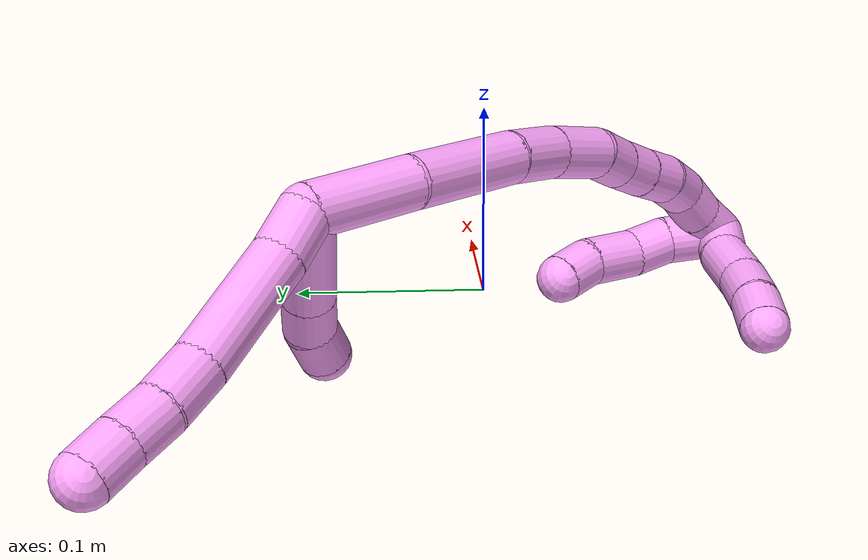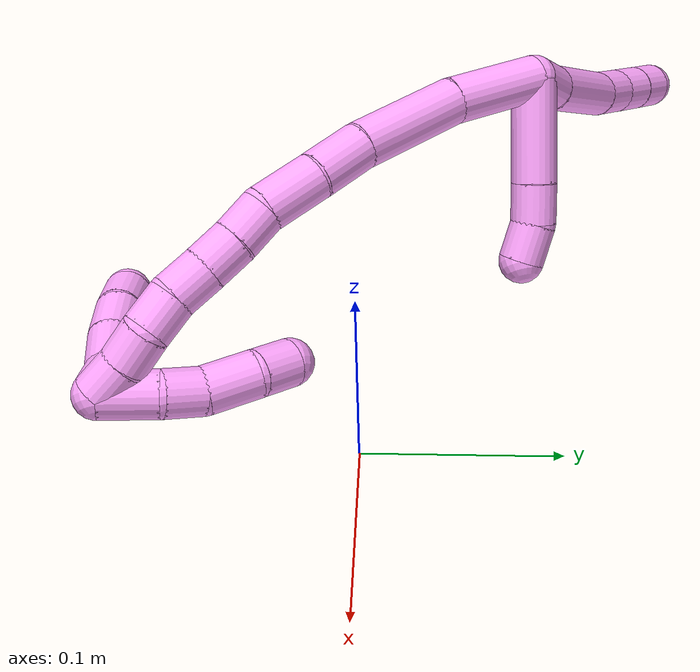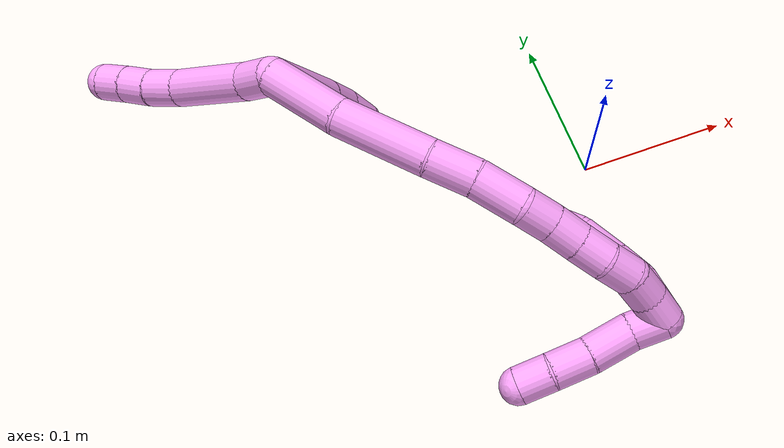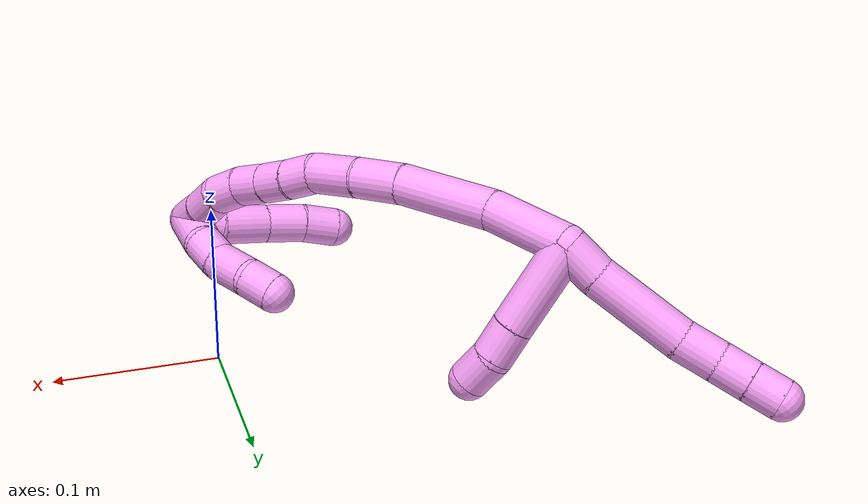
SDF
<sdf version="1.7">
 <world name="default">
  <model name="4">
   <static>0</static>
   <link name="4">
    <collision name="collision-cylinder-e_1_2_8">
     <pose>-0.011387 -0.00391 0.000358 1.47959 -1.23875 -1.15378</pose>
     <geometry><cylinder><radius>0.0125</radius><length>0.024089</length></cylinder></geometry>
     <surface>
      <friction><ode><mu>1.16</mu><mu2>1.16</mu2><slip1>0</slip1><slip2>0</slip2></ode></friction>
      <contact><ode><kp>1e+06</kp><kd>1</kd><max_vel>0</max_vel><min_depth>0.001</min_depth></ode></contact>
     </surface>
    </collision>
    <visual name="visual-cylinder-e_1_2_8">
     <pose>-0.011387 -0.00391 0.000358 1.47959 -1.23875 -1.15378</pose>
     <geometry><cylinder><radius>0.0125</radius><length>0.024089</length></cylinder></geometry>
     <material><ambient>1 0.65098 0.996078 1</ambient></material>
    </visual>
    <collision name="collision-cylinder-e_2_8_9">
     <pose>-0.051229 -0.015092 0.005506 0.988265 -1.27381 -0.758435</pose>
     <geometry><cylinder><radius>0.0125</radius><length>0.059518</length></cylinder></geometry>
     <surface>
      <friction><ode><mu>1.16</mu><mu2>1.16</mu2><slip1>0</slip1><slip2>0</slip2></ode></friction>
      <contact><ode><kp>1e+06</kp><kd>1</kd><max_vel>0</max_vel><min_depth>0.001</min_depth></ode></contact>
     </surface>
    </collision>
    <visual name="visual-cylinder-e_2_8_9">
     <pose>-0.051229 -0.015092 0.005506 0.988265 -1.27381 -0.758435</pose>
     <geometry><cylinder><radius>0.0125</radius><length>0.059518</length></cylinder></geometry>
     <material><ambient>1 0.65098 0.996078 1</ambient></material>
    </visual>
    <collision name="collision-cylinder-e_3_9_10">
     <pose>-0.091456 -0.024342 0.013521 0.550335 -1.25988 -0.405981</pose>
     <geometry><cylinder><radius>0.0125</radius><length>0.024726</length></cylinder></geometry>
     <surface>
      <friction><ode><mu>1.16</mu><mu2>1.16</mu2><slip1>0</slip1><slip2>0</slip2></ode></friction>
      <contact><ode><kp>1e+06</kp><kd>1</kd><max_vel>0</max_vel><min_depth>0.001</min_depth></ode></contact>
     </surface>
    </collision>
    <visual name="visual-cylinder-e_3_9_10">
     <pose>-0.091456 -0.024342 0.013521 0.550335 -1.25988 -0.405981</pose>
     <geometry><cylinder><radius>0.0125</radius><length>0.024726</length></cylinder></geometry>
     <material><ambient>1 0.65098 0.996078 1</ambient></material>
    </visual>
    <collision name="collision-cylinder-e_4_10_11">
     <pose>-0.11362 -0.026866 0.019303 0.210205 -1.32426 -0.164097</pose>
     <geometry><cylinder><radius>0.0125</radius><length>0.021435</length></cylinder></geometry>
     <surface>
      <friction><ode><mu>1.16</mu><mu2>1.16</mu2><slip1>0</slip1><slip2>0</slip2></ode></friction>
      <contact><ode><kp>1e+06</kp><kd>1</kd><max_vel>0</max_vel><min_depth>0.001</min_depth></ode></contact>
     </surface>
    </collision>
    <visual name="visual-cylinder-e_4_10_11">
     <pose>-0.11362 -0.026866 0.019303 0.210205 -1.32426 -0.164097</pose>
     <geometry><cylinder><radius>0.0125</radius><length>0.021435</length></cylinder></geometry>
     <material><ambient>1 0.65098 0.996078 1</ambient></material>
    </visual>
    <collision name="collision-cylinder-e_5_11_6">
     <pose>-0.133771 -0.028254 0.024392 0.321124 -1.30391 -0.245993</pose>
     <geometry><cylinder><radius>0.0125</radius><length>0.020232</length></cylinder></geometry>
     <surface>
      <friction><ode><mu>1.16</mu><mu2>1.16</mu2><slip1>0</slip1><slip2>0</slip2></ode></friction>
      <contact><ode><kp>1e+06</kp><kd>1</kd><max_vel>0</max_vel><min_depth>0.001</min_depth></ode></contact>
     </surface>
    </collision>
    <visual name="visual-cylinder-e_5_11_6">
     <pose>-0.133771 -0.028254 0.024392 0.321124 -1.30391 -0.245993</pose>
     <geometry><cylinder><radius>0.0125</radius><length>0.020232</length></cylinder></geometry>
     <material><ambient>1 0.65098 0.996078 1</ambient></material>
    </visual>
    <collision name="collision-cylinder-e_1_2_12">
     <pose>-0.003466 -0.01087 -0.025882 2.74397 -0.122837 -0.592501</pose>
     <geometry><cylinder><radius>0.0125</radius><length>0.056571</length></cylinder></geometry>
     <surface>
      <friction><ode><mu>1.16</mu><mu2>1.16</mu2><slip1>0</slip1><slip2>0</slip2></ode></friction>
      <contact><ode><kp>1e+06</kp><kd>1</kd><max_vel>0</max_vel><min_depth>0.001</min_depth></ode></contact>
     </surface>
    </collision>
    <visual name="visual-cylinder-e_1_2_12">
     <pose>-0.003466 -0.01087 -0.025882 2.74397 -0.122837 -0.592501</pose>
     <geometry><cylinder><radius>0.0125</radius><length>0.056571</length></cylinder></geometry>
     <material><ambient>1 0.65098 0.996078 1</ambient></material>
    </visual>
    <collision name="collision-cylinder-e_2_12_13">
     <pose>-0.008344 -0.026353 -0.061656 2.70529 -0.128672 -0.565657</pose>
     <geometry><cylinder><radius>0.0125</radius><length>0.022008</length></cylinder></geometry>
     <surface>
      <friction><ode><mu>1.16</mu><mu2>1.16</mu2><slip1>0</slip1><slip2>0</slip2></ode></friction>
      <contact><ode><kp>1e+06</kp><kd>1</kd><max_vel>0</max_vel><min_depth>0.001</min_depth></ode></contact>
     </surface>
    </collision>
    <visual name="visual-cylinder-e_2_12_13">
     <pose>-0.008344 -0.026353 -0.061656 2.70529 -0.128672 -0.565657</pose>
     <geometry><cylinder><radius>0.0125</radius><length>0.022008</length></cylinder></geometry>
     <material><ambient>1 0.65098 0.996078 1</ambient></material>
    </visual>
    <collision name="collision-cylinder-e_3_13_5">
     <pose>-0.008563 -0.037046 -0.080282 2.53344 0.111573 0.352229</pose>
     <geometry><cylinder><radius>0.0125</radius><length>0.02142</length></cylinder></geometry>
     <surface>
      <friction><ode><mu>1.16</mu><mu2>1.16</mu2><slip1>0</slip1><slip2>0</slip2></ode></friction>
      <contact><ode><kp>1e+06</kp><kd>1</kd><max_vel>0</max_vel><min_depth>0.001</min_depth></ode></contact>
     </surface>
    </collision>
    <visual name="visual-cylinder-e_3_13_5">
     <pose>-0.008563 -0.037046 -0.080282 2.53344 0.111573 0.352229</pose>
     <geometry><cylinder><radius>0.0125</radius><length>0.02142</length></cylinder></geometry>
     <material><ambient>1 0.65098 0.996078 1</ambient></material>
    </visual>
    <collision name="collision-cylinder-e_1_2_14">
     <pose>0.024576 -0.008556 -0.006011 2.18325 1.16852 1.80968</pose>
     <geometry><cylinder><radius>0.0125</radius><length>0.053416</length></cylinder></geometry>
     <surface>
      <friction><ode><mu>1.16</mu><mu2>1.16</mu2><slip1>0</slip1><slip2>0</slip2></ode></friction>
      <contact><ode><kp>1e+06</kp><kd>1</kd><max_vel>0</max_vel><min_depth>0.001</min_depth></ode></contact>
     </surface>
    </collision>
    <visual name="visual-cylinder-e_1_2_14">
     <pose>0.024576 -0.008556 -0.006011 2.18325 1.16852 1.80968</pose>
     <geometry><cylinder><radius>0.0125</radius><length>0.053416</length></cylinder></geometry>
     <material><ambient>1 0.65098 0.996078 1</ambient></material>
    </visual>
    <collision name="collision-cylinder-e_2_14_15">
     <pose>0.076656 -0.025614 -0.023938 2.52187 1.08172 2.16205</pose>
     <geometry><cylinder><radius>0.0125</radius><length>0.062314</length></cylinder></geometry>
     <surface>
      <friction><ode><mu>1.16</mu><mu2>1.16</mu2><slip1>0</slip1><slip2>0</slip2></ode></friction>
      <contact><ode><kp>1e+06</kp><kd>1</kd><max_vel>0</max_vel><min_depth>0.001</min_depth></ode></contact>
     </surface>
    </collision>
    <visual name="visual-cylinder-e_2_14_15">
     <pose>0.076656 -0.025614 -0.023938 2.52187 1.08172 2.16205</pose>
     <geometry><cylinder><radius>0.0125</radius><length>0.062314</length></cylinder></geometry>
     <material><ambient>1 0.65098 0.996078 1</ambient></material>
    </visual>
    <collision name="collision-cylinder-e_3_15_16">
     <pose>0.116722 -0.038643 -0.043258 2.59275 0.966184 2.15644</pose>
     <geometry><cylinder><radius>0.0125</radius><length>0.030536</length></cylinder></geometry>
     <surface>
      <friction><ode><mu>1.16</mu><mu2>1.16</mu2><slip1>0</slip1><slip2>0</slip2></ode></friction>
      <contact><ode><kp>1e+06</kp><kd>1</kd><max_vel>0</max_vel><min_depth>0.001</min_depth></ode></contact>
     </surface>
    </collision>
    <visual name="visual-cylinder-e_3_15_16">
     <pose>0.116722 -0.038643 -0.043258 2.59275 0.966184 2.15644</pose>
     <geometry><cylinder><radius>0.0125</radius><length>0.030536</length></cylinder></geometry>
     <material><ambient>1 0.65098 0.996078 1</ambient></material>
    </visual>
    <collision name="collision-cylinder-e_4_16_17">
     <pose>0.141936 -0.049789 -0.057945 2.40401 0.909829 1.80421</pose>
     <geometry><cylinder><radius>0.0125</radius><length>0.032059</length></cylinder></geometry>
     <surface>
      <friction><ode><mu>1.16</mu><mu2>1.16</mu2><slip1>0</slip1><slip2>0</slip2></ode></friction>
      <contact><ode><kp>1e+06</kp><kd>1</kd><max_vel>0</max_vel><min_depth>0.001</min_depth></ode></contact>
     </surface>
    </collision>
    <visual name="visual-cylinder-e_4_16_17">
     <pose>0.141936 -0.049789 -0.057945 2.40401 0.909829 1.80421</pose>
     <geometry><cylinder><radius>0.0125</radius><length>0.032059</length></cylinder></geometry>
     <material><ambient>1 0.65098 0.996078 1</ambient></material>
    </visual>
    <collision name="collision-cylinder-e_5_17_18">
     <pose>0.160688 -0.061426 -0.071743 2.48519 0.637949 1.54019</pose>
     <geometry><cylinder><radius>0.0125</radius><length>0.020478</length></cylinder></geometry>
     <surface>
      <friction><ode><mu>1.16</mu><mu2>1.16</mu2><slip1>0</slip1><slip2>0</slip2></ode></friction>
      <contact><ode><kp>1e+06</kp><kd>1</kd><max_vel>0</max_vel><min_depth>0.001</min_depth></ode></contact>
     </surface>
    </collision>
    <visual name="visual-cylinder-e_5_17_18">
     <pose>0.160688 -0.061426 -0.071743 2.48519 0.637949 1.54019</pose>
     <geometry><cylinder><radius>0.0125</radius><length>0.020478</length></cylinder></geometry>
     <material><ambient>1 0.65098 0.996078 1</ambient></material>
    </visual>
    <collision name="collision-cylinder-e_6_18_19">
     <pose>0.17317 -0.071762 -0.083893 2.38515 0.689352 1.46948</pose>
     <geometry><cylinder><radius>0.0125</radius><length>0.020077</length></cylinder></geometry>
     <surface>
      <friction><ode><mu>1.16</mu><mu2>1.16</mu2><slip1>0</slip1><slip2>0</slip2></ode></friction>
      <contact><ode><kp>1e+06</kp><kd>1</kd><max_vel>0</max_vel><min_depth>0.001</min_depth></ode></contact>
     </surface>
    </collision>
    <visual name="visual-cylinder-e_6_18_19">
     <pose>0.17317 -0.071762 -0.083893 2.38515 0.689352 1.46948</pose>
     <geometry><cylinder><radius>0.0125</radius><length>0.020077</length></cylinder></geometry>
     <material><ambient>1 0.65098 0.996078 1</ambient></material>
    </visual>
    <collision name="collision-cylinder-e_7_19_20">
     <pose>0.186439 -0.082306 -0.095138 2.39153 0.731523 1.54333</pose>
     <geometry><cylinder><radius>0.0125</radius><length>0.020611</length></cylinder></geometry>
     <surface>
      <friction><ode><mu>1.16</mu><mu2>1.16</mu2><slip1>0</slip1><slip2>0</slip2></ode></friction>
      <contact><ode><kp>1e+06</kp><kd>1</kd><max_vel>0</max_vel><min_depth>0.001</min_depth></ode></contact>
     </surface>
    </collision>
    <visual name="visual-cylinder-e_7_19_20">
     <pose>0.186439 -0.082306 -0.095138 2.39153 0.731523 1.54333</pose>
     <geometry><cylinder><radius>0.0125</radius><length>0.020611</length></cylinder></geometry>
     <material><ambient>1 0.65098 0.996078 1</ambient></material>
    </visual>
    <collision name="collision-cylinder-e_8_20_21">
     <pose>0.198589 -0.092791 -0.107749 2.49756 0.541511 1.38788</pose>
     <geometry><cylinder><radius>0.0125</radius><length>0.020432</length></cylinder></geometry>
     <surface>
      <friction><ode><mu>1.16</mu><mu2>1.16</mu2><slip1>0</slip1><slip2>0</slip2></ode></friction>
      <contact><ode><kp>1e+06</kp><kd>1</kd><max_vel>0</max_vel><min_depth>0.001</min_depth></ode></contact>
     </surface>
    </collision>
    <visual name="visual-cylinder-e_8_20_21">
     <pose>0.198589 -0.092791 -0.107749 2.49756 0.541511 1.38788</pose>
     <geometry><cylinder><radius>0.0125</radius><length>0.020432</length></cylinder></geometry>
     <material><ambient>1 0.65098 0.996078 1</ambient></material>
    </visual>
    <collision name="collision-cylinder-e_9_21_22">
     <pose>0.206754 -0.105381 -0.120931 2.27113 0.293523 0.615634</pose>
     <geometry><cylinder><radius>0.0125</radius><length>0.020039</length></cylinder></geometry>
     <surface>
      <friction><ode><mu>1.16</mu><mu2>1.16</mu2><slip1>0</slip1><slip2>0</slip2></ode></friction>
      <contact><ode><kp>1e+06</kp><kd>1</kd><max_vel>0</max_vel><min_depth>0.001</min_depth></ode></contact>
     </surface>
    </collision>
    <visual name="visual-cylinder-e_9_21_22">
     <pose>0.206754 -0.105381 -0.120931 2.27113 0.293523 0.615634</pose>
     <geometry><cylinder><radius>0.0125</radius><length>0.020039</length></cylinder></geometry>
     <material><ambient>1 0.65098 0.996078 1</ambient></material>
    </visual>
    <collision name="collision-cylinder-e_10_22_1">
     <pose>0.213261 -0.12045 -0.132359 2.16678 0.368444 0.676082</pose>
     <geometry><cylinder><radius>0.0125</radius><length>0.020039</length></cylinder></geometry>
     <surface>
      <friction><ode><mu>1.16</mu><mu2>1.16</mu2><slip1>0</slip1><slip2>0</slip2></ode></friction>
      <contact><ode><kp>1e+06</kp><kd>1</kd><max_vel>0</max_vel><min_depth>0.001</min_depth></ode></contact>
     </surface>
    </collision>
    <visual name="visual-cylinder-e_10_22_1">
     <pose>0.213261 -0.12045 -0.132359 2.16678 0.368444 0.676082</pose>
     <geometry><cylinder><radius>0.0125</radius><length>0.020039</length></cylinder></geometry>
     <material><ambient>1 0.65098 0.996078 1</ambient></material>
    </visual>
    <collision name="collision-cylinder-e_1_1_23">
     <pose>0.209632 -0.13312 -0.131136 0.651621 -0.727006 -0.25564</pose>
     <geometry><cylinder><radius>0.0125</radius><length>0.021779</length></cylinder></geometry>
     <surface>
      <friction><ode><mu>1.16</mu><mu2>1.16</mu2><slip1>0</slip1><slip2>0</slip2></ode></friction>
      <contact><ode><kp>1e+06</kp><kd>1</kd><max_vel>0</max_vel><min_depth>0.001</min_depth></ode></contact>
     </surface>
    </collision>
    <visual name="visual-cylinder-e_1_1_23">
     <pose>0.209632 -0.13312 -0.131136 0.651621 -0.727006 -0.25564</pose>
     <geometry><cylinder><radius>0.0125</radius><length>0.021779</length></cylinder></geometry>
     <material><ambient>1 0.65098 0.996078 1</ambient></material>
    </visual>
    <collision name="collision-cylinder-e_2_23_24">
     <pose>0.195297 -0.1456 -0.113616 0.599105 -0.487677 -0.153374</pose>
     <geometry><cylinder><radius>0.0125</radius><length>0.030296</length></cylinder></geometry>
     <surface>
      <friction><ode><mu>1.16</mu><mu2>1.16</mu2><slip1>0</slip1><slip2>0</slip2></ode></friction>
      <contact><ode><kp>1e+06</kp><kd>1</kd><max_vel>0</max_vel><min_depth>0.001</min_depth></ode></contact>
     </surface>
    </collision>
    <visual name="visual-cylinder-e_2_23_24">
     <pose>0.195297 -0.1456 -0.113616 0.599105 -0.487677 -0.153374</pose>
     <geometry><cylinder><radius>0.0125</radius><length>0.030296</length></cylinder></geometry>
     <material><ambient>1 0.65098 0.996078 1</ambient></material>
    </visual>
    <collision name="collision-cylinder-e_3_24_25">
     <pose>0.181285 -0.158465 -0.093174 0.515281 -0.569752 -0.15402</pose>
     <geometry><cylinder><radius>0.0125</radius><length>0.025634</length></cylinder></geometry>
     <surface>
      <friction><ode><mu>1.16</mu><mu2>1.16</mu2><slip1>0</slip1><slip2>0</slip2></ode></friction>
      <contact><ode><kp>1e+06</kp><kd>1</kd><max_vel>0</max_vel><min_depth>0.001</min_depth></ode></contact>
     </surface>
    </collision>
    <visual name="visual-cylinder-e_3_24_25">
     <pose>0.181285 -0.158465 -0.093174 0.515281 -0.569752 -0.15402</pose>
     <geometry><cylinder><radius>0.0125</radius><length>0.025634</length></cylinder></geometry>
     <material><ambient>1 0.65098 0.996078 1</ambient></material>
    </visual>
    <collision name="collision-cylinder-e_4_25_4">
     <pose>0.167452 -0.168997 -0.076771 0.639365 -0.669748 -0.229377</pose>
     <geometry><cylinder><radius>0.0125</radius><length>0.022291</length></cylinder></geometry>
     <surface>
      <friction><ode><mu>1.16</mu><mu2>1.16</mu2><slip1>0</slip1><slip2>0</slip2></ode></friction>
      <contact><ode><kp>1e+06</kp><kd>1</kd><max_vel>0</max_vel><min_depth>0.001</min_depth></ode></contact>
     </surface>
    </collision>
    <visual name="visual-cylinder-e_4_25_4">
     <pose>0.167452 -0.168997 -0.076771 0.639365 -0.669748 -0.229377</pose>
     <geometry><cylinder><radius>0.0125</radius><length>0.022291</length></cylinder></geometry>
     <material><ambient>1 0.65098 0.996078 1</ambient></material>
    </visual>
    <collision name="collision-cylinder-e_1_1_26">
     <pose>0.204559 -0.11977 -0.140003 -1.84834 -0.952911 1.1994</pose>
     <geometry><cylinder><radius>0.0125</radius><length>0.030208</length></cylinder></geometry>
     <surface>
      <friction><ode><mu>1.16</mu><mu2>1.16</mu2><slip1>0</slip1><slip2>0</slip2></ode></friction>
      <contact><ode><kp>1e+06</kp><kd>1</kd><max_vel>0</max_vel><min_depth>0.001</min_depth></ode></contact>
     </surface>
    </collision>
    <visual name="visual-cylinder-e_1_1_26">
     <pose>0.204559 -0.11977 -0.140003 -1.84834 -0.952911 1.1994</pose>
     <geometry><cylinder><radius>0.0125</radius><length>0.030208</length></cylinder></geometry>
     <material><ambient>1 0.65098 0.996078 1</ambient></material>
    </visual>
    <collision name="collision-cylinder-e_2_26_27">
     <pose>0.182331 -0.107836 -0.142815 -1.68798 -1.22765 1.34024</pose>
     <geometry><cylinder><radius>0.0125</radius><length>0.02106</length></cylinder></geometry>
     <surface>
      <friction><ode><mu>1.16</mu><mu2>1.16</mu2><slip1>0</slip1><slip2>0</slip2></ode></friction>
      <contact><ode><kp>1e+06</kp><kd>1</kd><max_vel>0</max_vel><min_depth>0.001</min_depth></ode></contact>
     </surface>
    </collision>
    <visual name="visual-cylinder-e_2_26_27">
     <pose>0.182331 -0.107836 -0.142815 -1.68798 -1.22765 1.34024</pose>
     <geometry><cylinder><radius>0.0125</radius><length>0.02106</length></cylinder></geometry>
     <material><ambient>1 0.65098 0.996078 1</ambient></material>
    </visual>
    <collision name="collision-cylinder-e_3_27_28">
     <pose>0.159959 -0.098401 -0.140538 -1.14394 -1.08983 0.744057</pose>
     <geometry><cylinder><radius>0.0125</radius><length>0.0281</length></cylinder></geometry>
     <surface>
      <friction><ode><mu>1.16</mu><mu2>1.16</mu2><slip1>0</slip1><slip2>0</slip2></ode></friction>
      <contact><ode><kp>1e+06</kp><kd>1</kd><max_vel>0</max_vel><min_depth>0.001</min_depth></ode></contact>
     </surface>
    </collision>
    <visual name="visual-cylinder-e_3_27_28">
     <pose>0.159959 -0.098401 -0.140538 -1.14394 -1.08983 0.744057</pose>
     <geometry><cylinder><radius>0.0125</radius><length>0.0281</length></cylinder></geometry>
     <material><ambient>1 0.65098 0.996078 1</ambient></material>
    </visual>
    <collision name="collision-cylinder-e_4_28_3">
     <pose>0.137572 -0.091006 -0.135477 -0.557689 -1.29666 0.427175</pose>
     <geometry><cylinder><radius>0.0125</radius><length>0.020632</length></cylinder></geometry>
     <surface>
      <friction><ode><mu>1.16</mu><mu2>1.16</mu2><slip1>0</slip1><slip2>0</slip2></ode></friction>
      <contact><ode><kp>1e+06</kp><kd>1</kd><max_vel>0</max_vel><min_depth>0.001</min_depth></ode></contact>
     </surface>
    </collision>
    <visual name="visual-cylinder-e_4_28_3">
     <pose>0.137572 -0.091006 -0.135477 -0.557689 -1.29666 0.427175</pose>
     <geometry><cylinder><radius>0.0125</radius><length>0.020632</length></cylinder></geometry>
     <material><ambient>1 0.65098 0.996078 1</ambient></material>
    </visual>
    <collision name="collision-sphere-3">
     <pose>0.127641 -0.089528 -0.133108 0 -0 0</pose>
     <geometry><sphere><radius>0.0125</radius></sphere></geometry>
     <surface>
      <friction><ode><mu>1.16</mu><mu2>1.16</mu2><slip1>0</slip1><slip2>0</slip2></ode></friction>
      <contact><ode><kp>1e+06</kp><kd>1</kd><max_vel>0</max_vel><min_depth>0.001</min_depth></ode></contact>
     </surface>
    </collision>
    <visual name="visual-sphere-3">
     <pose>0.127641 -0.089528 -0.133108 0 -0 0</pose>
     <geometry><sphere><radius>0.0125</radius></sphere></geometry>
     <material><ambient>1 0.65098 0.996078 1</ambient></material>
    </visual>
    <collision name="collision-sphere-28">
     <pose>0.147503 -0.092484 -0.137847 0 -0 0</pose>
     <geometry><sphere><radius>0.0125</radius></sphere></geometry>
     <surface>
      <friction><ode><mu>1.16</mu><mu2>1.16</mu2><slip1>0</slip1><slip2>0</slip2></ode></friction>
      <contact><ode><kp>1e+06</kp><kd>1</kd><max_vel>0</max_vel><min_depth>0.001</min_depth></ode></contact>
     </surface>
    </collision>
    <visual name="visual-sphere-28">
     <pose>0.147503 -0.092484 -0.137847 0 -0 0</pose>
     <geometry><sphere><radius>0.0125</radius></sphere></geometry>
     <material><ambient>1 0.65098 0.996078 1</ambient></material>
    </visual>
    <collision name="collision-sphere-27">
     <pose>0.172415 -0.104318 -0.143229 0 -0 0</pose>
     <geometry><sphere><radius>0.0125</radius></sphere></geometry>
     <surface>
      <friction><ode><mu>1.16</mu><mu2>1.16</mu2><slip1>0</slip1><slip2>0</slip2></ode></friction>
      <contact><ode><kp>1e+06</kp><kd>1</kd><max_vel>0</max_vel><min_depth>0.001</min_depth></ode></contact>
     </surface>
    </collision>
    <visual name="visual-sphere-27">
     <pose>0.172415 -0.104318 -0.143229 0 -0 0</pose>
     <geometry><sphere><radius>0.0125</radius></sphere></geometry>
     <material><ambient>1 0.65098 0.996078 1</ambient></material>
    </visual>
    <collision name="collision-sphere-26">
     <pose>0.192247 -0.111355 -0.142401 0 -0 0</pose>
     <geometry><sphere><radius>0.0125</radius></sphere></geometry>
     <surface>
      <friction><ode><mu>1.16</mu><mu2>1.16</mu2><slip1>0</slip1><slip2>0</slip2></ode></friction>
      <contact><ode><kp>1e+06</kp><kd>1</kd><max_vel>0</max_vel><min_depth>0.001</min_depth></ode></contact>
     </surface>
    </collision>
    <visual name="visual-sphere-26">
     <pose>0.192247 -0.111355 -0.142401 0 -0 0</pose>
     <geometry><sphere><radius>0.0125</radius></sphere></geometry>
     <material><ambient>1 0.65098 0.996078 1</ambient></material>
    </visual>
    <collision name="collision-sphere-4">
     <pose>0.160533 -0.17421 -0.069759 0 -0 0</pose>
     <geometry><sphere><radius>0.0125</radius></sphere></geometry>
     <surface>
      <friction><ode><mu>1.16</mu><mu2>1.16</mu2><slip1>0</slip1><slip2>0</slip2></ode></friction>
      <contact><ode><kp>1e+06</kp><kd>1</kd><max_vel>0</max_vel><min_depth>0.001</min_depth></ode></contact>
     </surface>
    </collision>
    <visual name="visual-sphere-4">
     <pose>0.160533 -0.17421 -0.069759 0 -0 0</pose>
     <geometry><sphere><radius>0.0125</radius></sphere></geometry>
     <material><ambient>1 0.65098 0.996078 1</ambient></material>
    </visual>
    <collision name="collision-sphere-25">
     <pose>0.174371 -0.163783 -0.083782 0 -0 0</pose>
     <geometry><sphere><radius>0.0125</radius></sphere></geometry>
     <surface>
      <friction><ode><mu>1.16</mu><mu2>1.16</mu2><slip1>0</slip1><slip2>0</slip2></ode></friction>
      <contact><ode><kp>1e+06</kp><kd>1</kd><max_vel>0</max_vel><min_depth>0.001</min_depth></ode></contact>
     </surface>
    </collision>
    <visual name="visual-sphere-25">
     <pose>0.174371 -0.163783 -0.083782 0 -0 0</pose>
     <geometry><sphere><radius>0.0125</radius></sphere></geometry>
     <material><ambient>1 0.65098 0.996078 1</ambient></material>
    </visual>
    <collision name="collision-sphere-24">
     <pose>0.188199 -0.153146 -0.102565 0 -0 0</pose>
     <geometry><sphere><radius>0.0125</radius></sphere></geometry>
     <surface>
      <friction><ode><mu>1.16</mu><mu2>1.16</mu2><slip1>0</slip1><slip2>0</slip2></ode></friction>
      <contact><ode><kp>1e+06</kp><kd>1</kd><max_vel>0</max_vel><min_depth>0.001</min_depth></ode></contact>
     </surface>
    </collision>
    <visual name="visual-sphere-24">
     <pose>0.188199 -0.153146 -0.102565 0 -0 0</pose>
     <geometry><sphere><radius>0.0125</radius></sphere></geometry>
     <material><ambient>1 0.65098 0.996078 1</ambient></material>
    </visual>
    <collision name="collision-sphere-23">
     <pose>0.202395 -0.138054 -0.124667 0 -0 0</pose>
     <geometry><sphere><radius>0.0125</radius></sphere></geometry>
     <surface>
      <friction><ode><mu>1.16</mu><mu2>1.16</mu2><slip1>0</slip1><slip2>0</slip2></ode></friction>
      <contact><ode><kp>1e+06</kp><kd>1</kd><max_vel>0</max_vel><min_depth>0.001</min_depth></ode></contact>
     </surface>
    </collision>
    <visual name="visual-sphere-23">
     <pose>0.202395 -0.138054 -0.124667 0 -0 0</pose>
     <geometry><sphere><radius>0.0125</radius></sphere></geometry>
     <material><ambient>1 0.65098 0.996078 1</ambient></material>
    </visual>
    <collision name="collision-sphere-1">
     <pose>0.21687 -0.128185 -0.137606 0 -0 0</pose>
     <geometry><sphere><radius>0.0125</radius></sphere></geometry>
     <surface>
      <friction><ode><mu>1.16</mu><mu2>1.16</mu2><slip1>0</slip1><slip2>0</slip2></ode></friction>
      <contact><ode><kp>1e+06</kp><kd>1</kd><max_vel>0</max_vel><min_depth>0.001</min_depth></ode></contact>
     </surface>
    </collision>
    <visual name="visual-sphere-1">
     <pose>0.21687 -0.128185 -0.137606 0 -0 0</pose>
     <geometry><sphere><radius>0.0125</radius></sphere></geometry>
     <material><ambient>1 0.65098 0.996078 1</ambient></material>
    </visual>
    <collision name="collision-sphere-22">
     <pose>0.209653 -0.112714 -0.127112 0 -0 0</pose>
     <geometry><sphere><radius>0.0125</radius></sphere></geometry>
     <surface>
      <friction><ode><mu>1.16</mu><mu2>1.16</mu2><slip1>0</slip1><slip2>0</slip2></ode></friction>
      <contact><ode><kp>1e+06</kp><kd>1</kd><max_vel>0</max_vel><min_depth>0.001</min_depth></ode></contact>
     </surface>
    </collision>
    <visual name="visual-sphere-22">
     <pose>0.209653 -0.112714 -0.127112 0 -0 0</pose>
     <geometry><sphere><radius>0.0125</radius></sphere></geometry>
     <material><ambient>1 0.65098 0.996078 1</ambient></material>
    </visual>
    <collision name="collision-sphere-21">
     <pose>0.203855 -0.098047 -0.11475 0 -0 0</pose>
     <geometry><sphere><radius>0.0125</radius></sphere></geometry>
     <surface>
      <friction><ode><mu>1.16</mu><mu2>1.16</mu2><slip1>0</slip1><slip2>0</slip2></ode></friction>
      <contact><ode><kp>1e+06</kp><kd>1</kd><max_vel>0</max_vel><min_depth>0.001</min_depth></ode></contact>
     </surface>
    </collision>
    <visual name="visual-sphere-21">
     <pose>0.203855 -0.098047 -0.11475 0 -0 0</pose>
     <geometry><sphere><radius>0.0125</radius></sphere></geometry>
     <material><ambient>1 0.65098 0.996078 1</ambient></material>
    </visual>
    <collision name="collision-sphere-6">
     <pose>-0.143529 -0.029096 0.026924 0 -0 0</pose>
     <geometry><sphere><radius>0.0125</radius></sphere></geometry>
     <surface>
      <friction><ode><mu>1.16</mu><mu2>1.16</mu2><slip1>0</slip1><slip2>0</slip2></ode></friction>
      <contact><ode><kp>1e+06</kp><kd>1</kd><max_vel>0</max_vel><min_depth>0.001</min_depth></ode></contact>
     </surface>
    </collision>
    <visual name="visual-sphere-6">
     <pose>-0.143529 -0.029096 0.026924 0 -0 0</pose>
     <geometry><sphere><radius>0.0125</radius></sphere></geometry>
     <material><ambient>1 0.65098 0.996078 1</ambient></material>
    </visual>
    <collision name="collision-sphere-11">
     <pose>-0.124013 -0.027412 0.021861 0 -0 0</pose>
     <geometry><sphere><radius>0.0125</radius></sphere></geometry>
     <surface>
      <friction><ode><mu>1.16</mu><mu2>1.16</mu2><slip1>0</slip1><slip2>0</slip2></ode></friction>
      <contact><ode><kp>1e+06</kp><kd>1</kd><max_vel>0</max_vel><min_depth>0.001</min_depth></ode></contact>
     </surface>
    </collision>
    <visual name="visual-sphere-11">
     <pose>-0.124013 -0.027412 0.021861 0 -0 0</pose>
     <geometry><sphere><radius>0.0125</radius></sphere></geometry>
     <material><ambient>1 0.65098 0.996078 1</ambient></material>
    </visual>
    <collision name="collision-sphere-10">
     <pose>-0.103226 -0.02632 0.016745 0 -0 0</pose>
     <geometry><sphere><radius>0.0125</radius></sphere></geometry>
     <surface>
      <friction><ode><mu>1.16</mu><mu2>1.16</mu2><slip1>0</slip1><slip2>0</slip2></ode></friction>
      <contact><ode><kp>1e+06</kp><kd>1</kd><max_vel>0</max_vel><min_depth>0.001</min_depth></ode></contact>
     </surface>
    </collision>
    <visual name="visual-sphere-10">
     <pose>-0.103226 -0.02632 0.016745 0 -0 0</pose>
     <geometry><sphere><radius>0.0125</radius></sphere></geometry>
     <material><ambient>1 0.65098 0.996078 1</ambient></material>
    </visual>
    <collision name="collision-sphere-9">
     <pose>-0.079685 -0.022364 0.010297 0 -0 0</pose>
     <geometry><sphere><radius>0.0125</radius></sphere></geometry>
     <surface>
      <friction><ode><mu>1.16</mu><mu2>1.16</mu2><slip1>0</slip1><slip2>0</slip2></ode></friction>
      <contact><ode><kp>1e+06</kp><kd>1</kd><max_vel>0</max_vel><min_depth>0.001</min_depth></ode></contact>
     </surface>
    </collision>
    <visual name="visual-sphere-9">
     <pose>-0.079685 -0.022364 0.010297 0 -0 0</pose>
     <geometry><sphere><radius>0.0125</radius></sphere></geometry>
     <material><ambient>1 0.65098 0.996078 1</ambient></material>
    </visual>
    <collision name="collision-sphere-2">
     <geometry><sphere><radius>0.0125</radius></sphere></geometry>
     <surface>
      <friction><ode><mu>1.16</mu><mu2>1.16</mu2><slip1>0</slip1><slip2>0</slip2></ode></friction>
      <contact><ode><kp>1e+06</kp><kd>1</kd><max_vel>0</max_vel><min_depth>0.001</min_depth></ode></contact>
     </surface>
    </collision>
    <visual name="visual-sphere-2">
     <geometry><sphere><radius>0.0125</radius></sphere></geometry>
     <material><ambient>1 0.65098 0.996078 1</ambient></material>
    </visual>
    <collision name="collision-sphere-19">
     <pose>0.179555 -0.077078 -0.089527 0 -0 0</pose>
     <geometry><sphere><radius>0.0125</radius></sphere></geometry>
     <surface>
      <friction><ode><mu>1.16</mu><mu2>1.16</mu2><slip1>0</slip1><slip2>0</slip2></ode></friction>
      <contact><ode><kp>1e+06</kp><kd>1</kd><max_vel>0</max_vel><min_depth>0.001</min_depth></ode></contact>
     </surface>
    </collision>
    <visual name="visual-sphere-19">
     <pose>0.179555 -0.077078 -0.089527 0 -0 0</pose>
     <geometry><sphere><radius>0.0125</radius></sphere></geometry>
     <material><ambient>1 0.65098 0.996078 1</ambient></material>
    </visual>
    <collision name="collision-sphere-8">
     <pose>-0.022773 -0.00782 0.000715 0 -0 0</pose>
     <geometry><sphere><radius>0.0125</radius></sphere></geometry>
     <surface>
      <friction><ode><mu>1.16</mu><mu2>1.16</mu2><slip1>0</slip1><slip2>0</slip2></ode></friction>
      <contact><ode><kp>1e+06</kp><kd>1</kd><max_vel>0</max_vel><min_depth>0.001</min_depth></ode></contact>
     </surface>
    </collision>
    <visual name="visual-sphere-8">
     <pose>-0.022773 -0.00782 0.000715 0 -0 0</pose>
     <geometry><sphere><radius>0.0125</radius></sphere></geometry>
     <material><ambient>1 0.65098 0.996078 1</ambient></material>
    </visual>
    <collision name="collision-sphere-12">
     <pose>-0.006932 -0.021741 -0.051765 0 -0 0</pose>
     <geometry><sphere><radius>0.0125</radius></sphere></geometry>
     <surface>
      <friction><ode><mu>1.16</mu><mu2>1.16</mu2><slip1>0</slip1><slip2>0</slip2></ode></friction>
      <contact><ode><kp>1e+06</kp><kd>1</kd><max_vel>0</max_vel><min_depth>0.001</min_depth></ode></contact>
     </surface>
    </collision>
    <visual name="visual-sphere-12">
     <pose>-0.006932 -0.021741 -0.051765 0 -0 0</pose>
     <geometry><sphere><radius>0.0125</radius></sphere></geometry>
     <material><ambient>1 0.65098 0.996078 1</ambient></material>
    </visual>
    <collision name="collision-sphere-13">
     <pose>-0.009756 -0.030964 -0.071546 0 -0 0</pose>
     <geometry><sphere><radius>0.0125</radius></sphere></geometry>
     <surface>
      <friction><ode><mu>1.16</mu><mu2>1.16</mu2><slip1>0</slip1><slip2>0</slip2></ode></friction>
      <contact><ode><kp>1e+06</kp><kd>1</kd><max_vel>0</max_vel><min_depth>0.001</min_depth></ode></contact>
     </surface>
    </collision>
    <visual name="visual-sphere-13">
     <pose>-0.009756 -0.030964 -0.071546 0 -0 0</pose>
     <geometry><sphere><radius>0.0125</radius></sphere></geometry>
     <material><ambient>1 0.65098 0.996078 1</ambient></material>
    </visual>
    <collision name="collision-sphere-5">
     <pose>-0.007371 -0.043127 -0.089017 0 -0 0</pose>
     <geometry><sphere><radius>0.0125</radius></sphere></geometry>
     <surface>
      <friction><ode><mu>1.16</mu><mu2>1.16</mu2><slip1>0</slip1><slip2>0</slip2></ode></friction>
      <contact><ode><kp>1e+06</kp><kd>1</kd><max_vel>0</max_vel><min_depth>0.001</min_depth></ode></contact>
     </surface>
    </collision>
    <visual name="visual-sphere-5">
     <pose>-0.007371 -0.043127 -0.089017 0 -0 0</pose>
     <geometry><sphere><radius>0.0125</radius></sphere></geometry>
     <material><ambient>1 0.65098 0.996078 1</ambient></material>
    </visual>
    <collision name="collision-sphere-14">
     <pose>0.049152 -0.017112 -0.012022 0 -0 0</pose>
     <geometry><sphere><radius>0.0125</radius></sphere></geometry>
     <surface>
      <friction><ode><mu>1.16</mu><mu2>1.16</mu2><slip1>0</slip1><slip2>0</slip2></ode></friction>
      <contact><ode><kp>1e+06</kp><kd>1</kd><max_vel>0</max_vel><min_depth>0.001</min_depth></ode></contact>
     </surface>
    </collision>
    <visual name="visual-sphere-14">
     <pose>0.049152 -0.017112 -0.012022 0 -0 0</pose>
     <geometry><sphere><radius>0.0125</radius></sphere></geometry>
     <material><ambient>1 0.65098 0.996078 1</ambient></material>
    </visual>
    <collision name="collision-sphere-15">
     <pose>0.10416 -0.034116 -0.035854 0 -0 0</pose>
     <geometry><sphere><radius>0.0125</radius></sphere></geometry>
     <surface>
      <friction><ode><mu>1.16</mu><mu2>1.16</mu2><slip1>0</slip1><slip2>0</slip2></ode></friction>
      <contact><ode><kp>1e+06</kp><kd>1</kd><max_vel>0</max_vel><min_depth>0.001</min_depth></ode></contact>
     </surface>
    </collision>
    <visual name="visual-sphere-15">
     <pose>0.10416 -0.034116 -0.035854 0 -0 0</pose>
     <geometry><sphere><radius>0.0125</radius></sphere></geometry>
     <material><ambient>1 0.65098 0.996078 1</ambient></material>
    </visual>
    <collision name="collision-sphere-16">
     <pose>0.129283 -0.043171 -0.050662 0 -0 0</pose>
     <geometry><sphere><radius>0.0125</radius></sphere></geometry>
     <surface>
      <friction><ode><mu>1.16</mu><mu2>1.16</mu2><slip1>0</slip1><slip2>0</slip2></ode></friction>
      <contact><ode><kp>1e+06</kp><kd>1</kd><max_vel>0</max_vel><min_depth>0.001</min_depth></ode></contact>
     </surface>
    </collision>
    <visual name="visual-sphere-16">
     <pose>0.129283 -0.043171 -0.050662 0 -0 0</pose>
     <geometry><sphere><radius>0.0125</radius></sphere></geometry>
     <material><ambient>1 0.65098 0.996078 1</ambient></material>
    </visual>
    <collision name="collision-sphere-17">
     <pose>0.15459 -0.056406 -0.065228 0 -0 0</pose>
     <geometry><sphere><radius>0.0125</radius></sphere></geometry>
     <surface>
      <friction><ode><mu>1.16</mu><mu2>1.16</mu2><slip1>0</slip1><slip2>0</slip2></ode></friction>
      <contact><ode><kp>1e+06</kp><kd>1</kd><max_vel>0</max_vel><min_depth>0.001</min_depth></ode></contact>
     </surface>
    </collision>
    <visual name="visual-sphere-17">
     <pose>0.15459 -0.056406 -0.065228 0 -0 0</pose>
     <geometry><sphere><radius>0.0125</radius></sphere></geometry>
     <material><ambient>1 0.65098 0.996078 1</ambient></material>
    </visual>
    <collision name="collision-sphere-18">
     <pose>0.166785 -0.066445 -0.078259 0 -0 0</pose>
     <geometry><sphere><radius>0.0125</radius></sphere></geometry>
     <surface>
      <friction><ode><mu>1.16</mu><mu2>1.16</mu2><slip1>0</slip1><slip2>0</slip2></ode></friction>
      <contact><ode><kp>1e+06</kp><kd>1</kd><max_vel>0</max_vel><min_depth>0.001</min_depth></ode></contact>
     </surface>
    </collision>
    <visual name="visual-sphere-18">
     <pose>0.166785 -0.066445 -0.078259 0 -0 0</pose>
     <geometry><sphere><radius>0.0125</radius></sphere></geometry>
     <material><ambient>1 0.65098 0.996078 1</ambient></material>
    </visual>
    <collision name="collision-sphere-20">
     <pose>0.193324 -0.087534 -0.100749 0 -0 0</pose>
     <geometry><sphere><radius>0.0125</radius></sphere></geometry>
     <surface>
      <friction><ode><mu>1.16</mu><mu2>1.16</mu2><slip1>0</slip1><slip2>0</slip2></ode></friction>
      <contact><ode><kp>1e+06</kp><kd>1</kd><max_vel>0</max_vel><min_depth>0.001</min_depth></ode></contact>
     </surface>
    </collision>
    <visual name="visual-sphere-20">
     <pose>0.193324 -0.087534 -0.100749 0 -0 0</pose>
     <geometry><sphere><radius>0.0125</radius></sphere></geometry>
     <material><ambient>1 0.65098 0.996078 1</ambient></material>
    </visual>
    <inertial>
     <pose>0.082951 -0.061396 -0.059633 0 -0 0</pose>
     <mass>0.75</mass>
     <inertia><ixx>3.2e-05</ixx><ixy>0</ixy><ixz>0</ixz><iyy>6.2e-05</iyy><iyz>0</iyz><izz>2.1e-05</izz></inertia>
    </inertial>
   </link>
   <pose>-0.187424 0.087831 0.094819 0.897996 -0.485652 -0.968254</pose>
  </model>
 </world>
</sdf>
